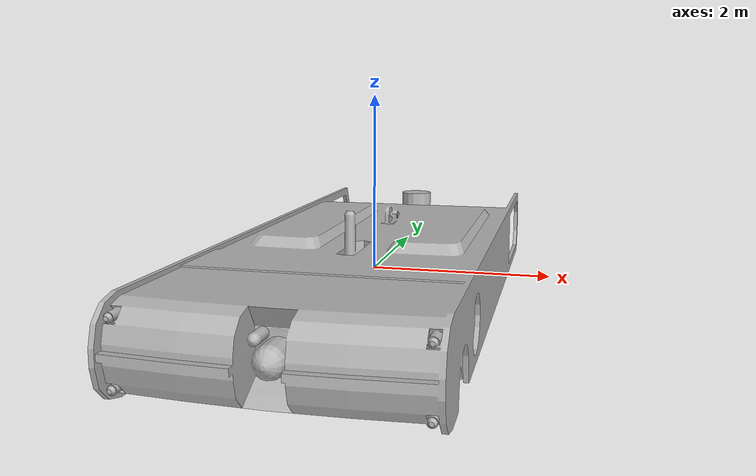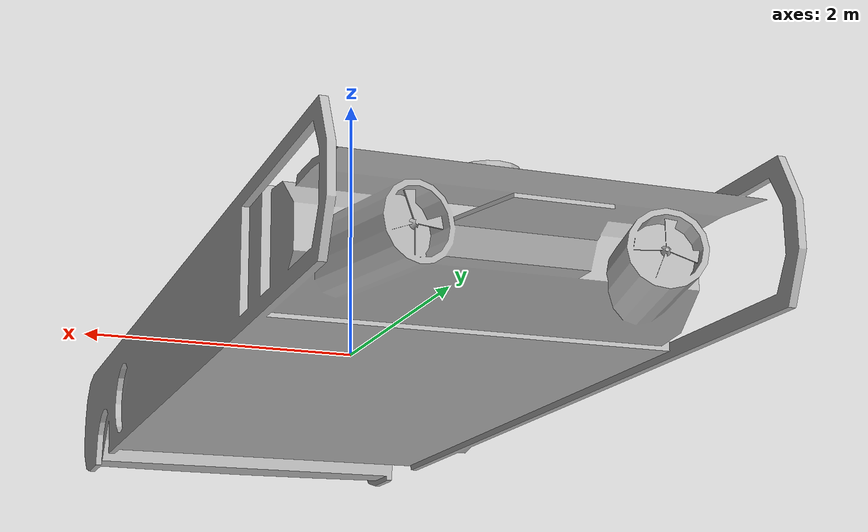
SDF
<?xml version='1.0'?>
<sdf version='1.6'>
  <model name='clownfish'>
    <link name='base_link'>
      <self_collide>0</self_collide>
      <static>true</static>
      <pose frame=''>0 0 0 0 -0 0</pose>
      <gravity>1</gravity>
      <inertial>
        <mass>18.9727</mass>
        <pose frame=''>0 0 0 0 -0 0</pose>
        <inertia>
          <ixx>93.6146</ixx>
          <ixy>0</ixy>
          <ixz>0</ixz>
          <iyy>13.7192</iyy>
          <iyz>0</iyz>
          <izz>104.867</izz>
        </inertia>
      </inertial>
      <visual name='visual'>
        <pose frame=''>0 0 0 0 -0 0</pose>
        <geometry>
          <mesh>
            <uri>model://Clownfish/mesh/SAAB_Sabertooth.dae</uri>
          </mesh>
        </geometry>
      </visual>
      <collision name='mount'>
        <laser_retro>0</laser_retro>
        <max_contacts>10</max_contacts>
        <pose frame=''>0.02 0.76 0.5 0 -0 0</pose>
        <geometry>
          <cylinder>
            <radius>0.1</radius>
            <length>0.2</length>
          </cylinder>
        </geometry>

      </collision>
      <collision name='antenna'>
        <laser_retro>0</laser_retro>
        <max_contacts>10</max_contacts>
        <pose frame=''>0 -1.082 0.57 0 -0 0</pose>
        <geometry>
          <cylinder>
            <radius>0.06</radius>
            <length>0.5</length>
          </cylinder>
        </geometry>
      </collision>
      <collision name='body'>
        <laser_retro>0</laser_retro>
        <max_contacts>10</max_contacts>
        <pose frame=''>0 0.08 0 0 -0 0</pose>
        <geometry>
          <box>
            <size>2.81018 7.50395 0.883241</size>
          </box>
        </geometry>
      </collision>
    </link>
  </model>
</sdf>
